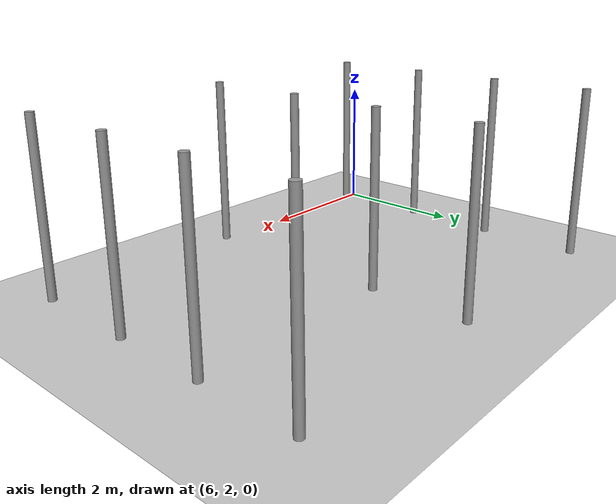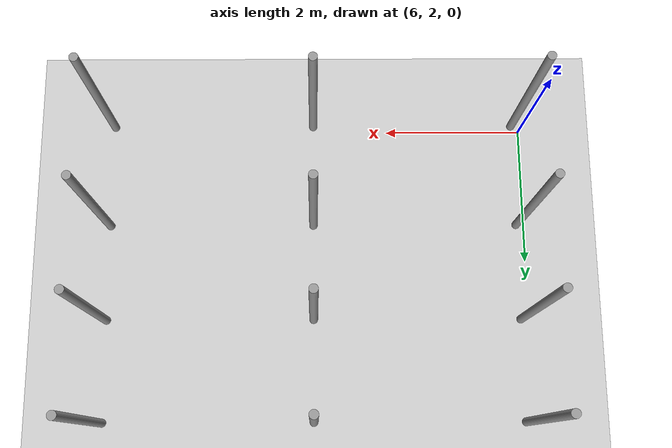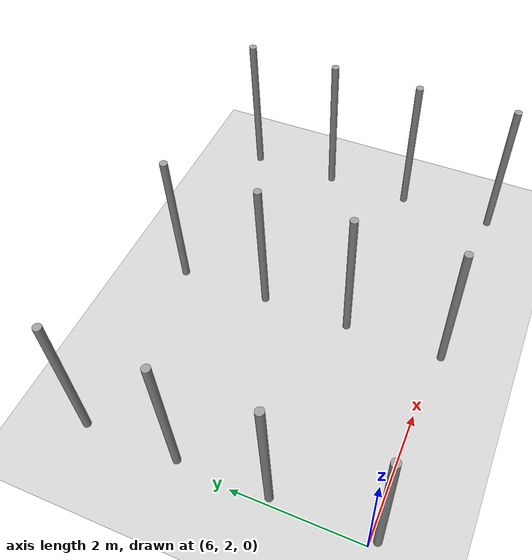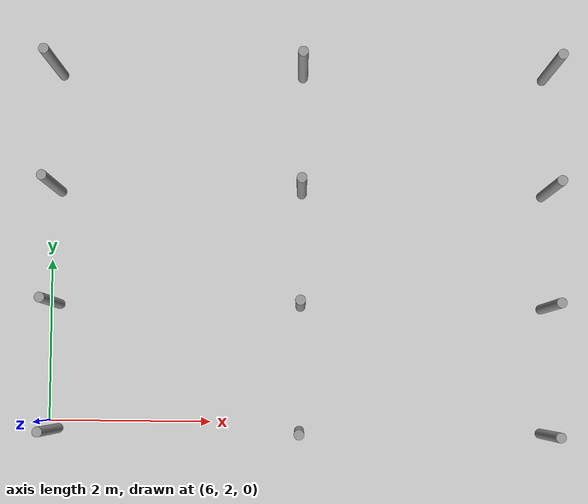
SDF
<sdf version="1.6">
 <world name="default">
  <model name="ground_plane">
   <static>1</static>
   <link name="link">
    <collision name="collision">
     <geometry><plane><normal>0 0 1</normal><size>100 100</size></plane></geometry>
     <surface><friction><ode><mu>100</mu><mu2>50</mu2></ode></friction></surface>
    </collision>
    <visual name="visual">
     <cast_shadows>0</cast_shadows>
     <geometry><plane><normal>0 0 1</normal><size>100 100</size></plane></geometry>
     <material>
      <script><uri>file://media/materials/scripts/gazebo.material</uri><name>Gazebo/Grey</name></script>
     </material>
    </visual>
   </link>
  </model>
  <model name="pole">
   <link name="link_0">
    <inertial>
     <mass>0.0364582</mass>
     <inertia>
      <ixx>0.00312124</ixx>
      <ixy>0</ixy>
      <ixz>0</ixz>
      <iyy>0.00312124</iyy>
      <iyz>0</iyz>
      <izz>0.00016615</izz>
     </inertia>
    </inertial>
    <visual name="visual">
     <geometry><cylinder><radius>0.06</radius><length>2.5</length></cylinder></geometry>
     <material>
      <lighting>1</lighting>
      <script><uri>file://media/materials/scripts/gazebo.material</uri><name>Gazebo/Grey</name></script>
      <ambient>0.3 0.3 0.3 1</ambient>
      <diffuse>0.7 0.7 0.7 1</diffuse>
      <specular>0.01 0.01 0.01 1</specular>
      <emissive>0 0 0 1</emissive>
      <shader type="vertex"><normal_map>__default__</normal_map></shader>
     </material>
    </visual>
    <collision name="collision">
     <geometry><cylinder><radius>0.06</radius><length>2.5</length></cylinder></geometry>
     <surface>
      <friction>
       <ode><mu>1</mu><mu2>1</mu2><fdir1>0 0 0</fdir1><slip1>0</slip1><slip2>0</slip2></ode>
       <torsional>
        <coefficient>1</coefficient>
        <patch_radius>0</patch_radius>
        <surface_radius>0</surface_radius>
        <use_patch_radius>1</use_patch_radius>
        <ode><slip>0</slip></ode>
       </torsional>
      </friction>
      <bounce><restitution_coefficient>0</restitution_coefficient><threshold>1e+06</threshold></bounce>
      <contact>
       <collide_without_contact>0</collide_without_contact>
       <collide_without_contact_bitmask>1</collide_without_contact_bitmask>
       <collide_bitmask>1</collide_bitmask>
       <ode>
        <soft_cfm>0</soft_cfm>
        <soft_erp>0.2</soft_erp>
        <kp>1e+13</kp>
        <kd>1</kd>
        <max_vel>0.01</max_vel>
        <min_depth>0</min_depth>
       </ode>
       <bullet>
        <split_impulse>1</split_impulse>
        <split_impulse_penetration_threshold>-0.01</split_impulse_penetration_threshold>
        <soft_cfm>0</soft_cfm>
        <soft_erp>0.2</soft_erp>
        <kp>1e+13</kp>
        <kd>1</kd>
       </bullet>
      </contact>
     </surface>
    </collision>
   </link>
   <static>0</static>
   <pose>6.10672 1.8998 1.25 -1e-06 1e-06 -0.064377</pose>
  </model>
  <model name="pole_0">
   <link name="link_0">
    <inertial>
     <mass>0.0364582</mass>
     <inertia>
      <ixx>0.00312124</ixx>
      <ixy>0</ixy>
      <ixz>0</ixz>
      <iyy>0.00312124</iyy>
      <iyz>0</iyz>
      <izz>0.00016615</izz>
     </inertia>
    </inertial>
    <visual name="visual">
     <geometry><cylinder><radius>0.06</radius><length>2.5</length></cylinder></geometry>
     <material>
      <lighting>1</lighting>
      <script><uri>file://media/materials/scripts/gazebo.material</uri><name>Gazebo/Grey</name></script>
      <ambient>0.3 0.3 0.3 1</ambient>
      <diffuse>0.7 0.7 0.7 1</diffuse>
      <specular>0.01 0.01 0.01 1</specular>
      <emissive>0 0 0 1</emissive>
      <shader type="vertex"><normal_map>__default__</normal_map></shader>
     </material>
    </visual>
    <collision name="collision">
     <geometry><cylinder><radius>0.06</radius><length>2.5</length></cylinder></geometry>
     <surface>
      <friction>
       <ode><mu>1</mu><mu2>1</mu2><fdir1>0 0 0</fdir1><slip1>0</slip1><slip2>0</slip2></ode>
       <torsional>
        <coefficient>1</coefficient>
        <patch_radius>0</patch_radius>
        <surface_radius>0</surface_radius>
        <use_patch_radius>1</use_patch_radius>
        <ode><slip>0</slip></ode>
       </torsional>
      </friction>
      <bounce><restitution_coefficient>0</restitution_coefficient><threshold>1e+06</threshold></bounce>
      <contact>
       <collide_without_contact>0</collide_without_contact>
       <collide_without_contact_bitmask>1</collide_without_contact_bitmask>
       <collide_bitmask>1</collide_bitmask>
       <ode>
        <soft_cfm>0</soft_cfm>
        <soft_erp>0.2</soft_erp>
        <kp>1e+13</kp>
        <kd>1</kd>
        <max_vel>0.01</max_vel>
        <min_depth>0</min_depth>
       </ode>
       <bullet>
        <split_impulse>1</split_impulse>
        <split_impulse_penetration_threshold>-0.01</split_impulse_penetration_threshold>
        <soft_cfm>0</soft_cfm>
        <soft_erp>0.2</soft_erp>
        <kp>1e+13</kp>
        <kd>1</kd>
       </bullet>
      </contact>
     </surface>
    </collision>
   </link>
   <static>0</static>
   <pose>6.10673 3.44588 1.25 0 -1e-06 -0.035446</pose>
  </model>
  <model name="pole_1">
   <link name="link_0">
    <inertial>
     <mass>0.0364582</mass>
     <inertia>
      <ixx>0.00312124</ixx>
      <ixy>0</ixy>
      <ixz>0</ixz>
      <iyy>0.00312124</iyy>
      <iyz>0</iyz>
      <izz>0.00016615</izz>
     </inertia>
    </inertial>
    <visual name="visual">
     <geometry><cylinder><radius>0.06</radius><length>2.5</length></cylinder></geometry>
     <material>
      <lighting>1</lighting>
      <script><uri>file://media/materials/scripts/gazebo.material</uri><name>Gazebo/Grey</name></script>
      <ambient>0.3 0.3 0.3 1</ambient>
      <diffuse>0.7 0.7 0.7 1</diffuse>
      <specular>0.01 0.01 0.01 1</specular>
      <emissive>0 0 0 1</emissive>
      <shader type="vertex"><normal_map>__default__</normal_map></shader>
     </material>
    </visual>
    <collision name="collision">
     <geometry><cylinder><radius>0.06</radius><length>2.5</length></cylinder></geometry>
     <surface>
      <friction>
       <ode><mu>1</mu><mu2>1</mu2><fdir1>0 0 0</fdir1><slip1>0</slip1><slip2>0</slip2></ode>
       <torsional>
        <coefficient>1</coefficient>
        <patch_radius>0</patch_radius>
        <surface_radius>0</surface_radius>
        <use_patch_radius>1</use_patch_radius>
        <ode><slip>0</slip></ode>
       </torsional>
      </friction>
      <bounce><restitution_coefficient>0</restitution_coefficient><threshold>1e+06</threshold></bounce>
      <contact>
       <collide_without_contact>0</collide_without_contact>
       <collide_without_contact_bitmask>1</collide_without_contact_bitmask>
       <collide_bitmask>1</collide_bitmask>
       <ode>
        <soft_cfm>0</soft_cfm>
        <soft_erp>0.2</soft_erp>
        <kp>1e+13</kp>
        <kd>1</kd>
        <max_vel>0.01</max_vel>
        <min_depth>0</min_depth>
       </ode>
       <bullet>
        <split_impulse>1</split_impulse>
        <split_impulse_penetration_threshold>-0.01</split_impulse_penetration_threshold>
        <soft_cfm>0</soft_cfm>
        <soft_erp>0.2</soft_erp>
        <kp>1e+13</kp>
        <kd>1</kd>
       </bullet>
      </contact>
     </surface>
    </collision>
   </link>
   <static>0</static>
   <pose>6.10675 4.85486 1.24999 -1e-06 1e-06 -0.037347</pose>
  </model>
  <model name="pole_2">
   <link name="link_0">
    <inertial>
     <mass>0.0364582</mass>
     <inertia>
      <ixx>0.00312124</ixx>
      <ixy>0</ixy>
      <ixz>0</ixz>
      <iyy>0.00312124</iyy>
      <iyz>0</iyz>
      <izz>0.00016615</izz>
     </inertia>
    </inertial>
    <visual name="visual">
     <geometry><cylinder><radius>0.06</radius><length>2.5</length></cylinder></geometry>
     <material>
      <lighting>1</lighting>
      <script><uri>file://media/materials/scripts/gazebo.material</uri><name>Gazebo/Grey</name></script>
      <ambient>0.3 0.3 0.3 1</ambient>
      <diffuse>0.7 0.7 0.7 1</diffuse>
      <specular>0.01 0.01 0.01 1</specular>
      <emissive>0 0 0 1</emissive>
      <shader type="vertex"><normal_map>__default__</normal_map></shader>
     </material>
    </visual>
    <collision name="collision">
     <geometry><cylinder><radius>0.06</radius><length>2.5</length></cylinder></geometry>
     <surface>
      <friction>
       <ode><mu>1</mu><mu2>1</mu2><fdir1>0 0 0</fdir1><slip1>0</slip1><slip2>0</slip2></ode>
       <torsional>
        <coefficient>1</coefficient>
        <patch_radius>0</patch_radius>
        <surface_radius>0</surface_radius>
        <use_patch_radius>1</use_patch_radius>
        <ode><slip>0</slip></ode>
       </torsional>
      </friction>
      <bounce><restitution_coefficient>0</restitution_coefficient><threshold>1e+06</threshold></bounce>
      <contact>
       <collide_without_contact>0</collide_without_contact>
       <collide_without_contact_bitmask>1</collide_without_contact_bitmask>
       <collide_bitmask>1</collide_bitmask>
       <ode>
        <soft_cfm>0</soft_cfm>
        <soft_erp>0.2</soft_erp>
        <kp>1e+13</kp>
        <kd>1</kd>
        <max_vel>0.01</max_vel>
        <min_depth>0</min_depth>
       </ode>
       <bullet>
        <split_impulse>1</split_impulse>
        <split_impulse_penetration_threshold>-0.01</split_impulse_penetration_threshold>
        <soft_cfm>0</soft_cfm>
        <soft_erp>0.2</soft_erp>
        <kp>1e+13</kp>
        <kd>1</kd>
       </bullet>
      </contact>
     </surface>
    </collision>
   </link>
   <static>0</static>
   <pose>6.10639 6.31778 1.24999 0 2e-06 -0.044124</pose>
  </model>
  <model name="pole_3">
   <link name="link_0">
    <inertial>
     <mass>0.0364582</mass>
     <inertia>
      <ixx>0.00312124</ixx>
      <ixy>0</ixy>
      <ixz>0</ixz>
      <iyy>0.00312124</iyy>
      <iyz>0</iyz>
      <izz>0.00016615</izz>
     </inertia>
    </inertial>
    <visual name="visual">
     <geometry><cylinder><radius>0.06</radius><length>2.5</length></cylinder></geometry>
     <material>
      <lighting>1</lighting>
      <script><uri>file://media/materials/scripts/gazebo.material</uri><name>Gazebo/Grey</name></script>
      <ambient>0.3 0.3 0.3 1</ambient>
      <diffuse>0.7 0.7 0.7 1</diffuse>
      <specular>0.01 0.01 0.01 1</specular>
      <emissive>0 0 0 1</emissive>
      <shader type="vertex"><normal_map>__default__</normal_map></shader>
     </material>
    </visual>
    <collision name="collision">
     <geometry><cylinder><radius>0.06</radius><length>2.5</length></cylinder></geometry>
     <surface>
      <friction>
       <ode><mu>1</mu><mu2>1</mu2><fdir1>0 0 0</fdir1><slip1>0</slip1><slip2>0</slip2></ode>
       <torsional>
        <coefficient>1</coefficient>
        <patch_radius>0</patch_radius>
        <surface_radius>0</surface_radius>
        <use_patch_radius>1</use_patch_radius>
        <ode><slip>0</slip></ode>
       </torsional>
      </friction>
      <bounce><restitution_coefficient>0</restitution_coefficient><threshold>1e+06</threshold></bounce>
      <contact>
       <collide_without_contact>0</collide_without_contact>
       <collide_without_contact_bitmask>1</collide_without_contact_bitmask>
       <collide_bitmask>1</collide_bitmask>
       <ode>
        <soft_cfm>0</soft_cfm>
        <soft_erp>0.2</soft_erp>
        <kp>1e+13</kp>
        <kd>1</kd>
        <max_vel>0.01</max_vel>
        <min_depth>0</min_depth>
       </ode>
       <bullet>
        <split_impulse>1</split_impulse>
        <split_impulse_penetration_threshold>-0.01</split_impulse_penetration_threshold>
        <soft_cfm>0</soft_cfm>
        <soft_erp>0.2</soft_erp>
        <kp>1e+13</kp>
        <kd>1</kd>
       </bullet>
      </contact>
     </surface>
    </collision>
   </link>
   <static>0</static>
   <pose>12.1068 1.89979 1.24999 -1e-06 3e-06 -0.038594</pose>
  </model>
  <model name="pole_4">
   <link name="link_0">
    <inertial>
     <mass>0.0364582</mass>
     <inertia>
      <ixx>0.00312124</ixx>
      <ixy>0</ixy>
      <ixz>0</ixz>
      <iyy>0.00312124</iyy>
      <iyz>0</iyz>
      <izz>0.00016615</izz>
     </inertia>
    </inertial>
    <visual name="visual">
     <geometry><cylinder><radius>0.06</radius><length>2.5</length></cylinder></geometry>
     <material>
      <lighting>1</lighting>
      <script><uri>file://media/materials/scripts/gazebo.material</uri><name>Gazebo/Grey</name></script>
      <ambient>0.3 0.3 0.3 1</ambient>
      <diffuse>0.7 0.7 0.7 1</diffuse>
      <specular>0.01 0.01 0.01 1</specular>
      <emissive>0 0 0 1</emissive>
      <shader type="vertex"><normal_map>__default__</normal_map></shader>
     </material>
    </visual>
    <collision name="collision">
     <geometry><cylinder><radius>0.06</radius><length>2.5</length></cylinder></geometry>
     <surface>
      <friction>
       <ode><mu>1</mu><mu2>1</mu2><fdir1>0 0 0</fdir1><slip1>0</slip1><slip2>0</slip2></ode>
       <torsional>
        <coefficient>1</coefficient>
        <patch_radius>0</patch_radius>
        <surface_radius>0</surface_radius>
        <use_patch_radius>1</use_patch_radius>
        <ode><slip>0</slip></ode>
       </torsional>
      </friction>
      <bounce><restitution_coefficient>0</restitution_coefficient><threshold>1e+06</threshold></bounce>
      <contact>
       <collide_without_contact>0</collide_without_contact>
       <collide_without_contact_bitmask>1</collide_without_contact_bitmask>
       <collide_bitmask>1</collide_bitmask>
       <ode>
        <soft_cfm>0</soft_cfm>
        <soft_erp>0.2</soft_erp>
        <kp>1e+13</kp>
        <kd>1</kd>
        <max_vel>0.01</max_vel>
        <min_depth>0</min_depth>
       </ode>
       <bullet>
        <split_impulse>1</split_impulse>
        <split_impulse_penetration_threshold>-0.01</split_impulse_penetration_threshold>
        <soft_cfm>0</soft_cfm>
        <soft_erp>0.2</soft_erp>
        <kp>1e+13</kp>
        <kd>1</kd>
       </bullet>
      </contact>
     </surface>
    </collision>
   </link>
   <static>0</static>
   <pose>9.10673 3.44592 1.25 -1e-06 -0 -0.035307</pose>
  </model>
  <model name="pole_5">
   <link name="link_0">
    <inertial>
     <mass>0.0364582</mass>
     <inertia>
      <ixx>0.00312124</ixx>
      <ixy>0</ixy>
      <ixz>0</ixz>
      <iyy>0.00312124</iyy>
      <iyz>0</iyz>
      <izz>0.00016615</izz>
     </inertia>
    </inertial>
    <visual name="visual">
     <geometry><cylinder><radius>0.06</radius><length>2.5</length></cylinder></geometry>
     <material>
      <lighting>1</lighting>
      <script><uri>file://media/materials/scripts/gazebo.material</uri><name>Gazebo/Grey</name></script>
      <ambient>0.3 0.3 0.3 1</ambient>
      <diffuse>0.7 0.7 0.7 1</diffuse>
      <specular>0.01 0.01 0.01 1</specular>
      <emissive>0 0 0 1</emissive>
      <shader type="vertex"><normal_map>__default__</normal_map></shader>
     </material>
    </visual>
    <collision name="collision">
     <geometry><cylinder><radius>0.06</radius><length>2.5</length></cylinder></geometry>
     <surface>
      <friction>
       <ode><mu>1</mu><mu2>1</mu2><fdir1>0 0 0</fdir1><slip1>0</slip1><slip2>0</slip2></ode>
       <torsional>
        <coefficient>1</coefficient>
        <patch_radius>0</patch_radius>
        <surface_radius>0</surface_radius>
        <use_patch_radius>1</use_patch_radius>
        <ode><slip>0</slip></ode>
       </torsional>
      </friction>
      <bounce><restitution_coefficient>0</restitution_coefficient><threshold>1e+06</threshold></bounce>
      <contact>
       <collide_without_contact>0</collide_without_contact>
       <collide_without_contact_bitmask>1</collide_without_contact_bitmask>
       <collide_bitmask>1</collide_bitmask>
       <ode>
        <soft_cfm>0</soft_cfm>
        <soft_erp>0.2</soft_erp>
        <kp>1e+13</kp>
        <kd>1</kd>
        <max_vel>0.01</max_vel>
        <min_depth>0</min_depth>
       </ode>
       <bullet>
        <split_impulse>1</split_impulse>
        <split_impulse_penetration_threshold>-0.01</split_impulse_penetration_threshold>
        <soft_cfm>0</soft_cfm>
        <soft_erp>0.2</soft_erp>
        <kp>1e+13</kp>
        <kd>1</kd>
       </bullet>
      </contact>
     </surface>
    </collision>
   </link>
   <static>0</static>
   <pose>9.10679 4.85497 1.24999 0 -1e-06 -0.03492</pose>
  </model>
  <model name="pole_6">
   <link name="link_0">
    <inertial>
     <mass>0.0364582</mass>
     <inertia>
      <ixx>0.00312124</ixx>
      <ixy>0</ixy>
      <ixz>0</ixz>
      <iyy>0.00312124</iyy>
      <iyz>0</iyz>
      <izz>0.00016615</izz>
     </inertia>
    </inertial>
    <visual name="visual">
     <geometry><cylinder><radius>0.06</radius><length>2.5</length></cylinder></geometry>
     <material>
      <lighting>1</lighting>
      <script><uri>file://media/materials/scripts/gazebo.material</uri><name>Gazebo/Grey</name></script>
      <ambient>0.3 0.3 0.3 1</ambient>
      <diffuse>0.7 0.7 0.7 1</diffuse>
      <specular>0.01 0.01 0.01 1</specular>
      <emissive>0 0 0 1</emissive>
      <shader type="vertex"><normal_map>__default__</normal_map></shader>
     </material>
    </visual>
    <collision name="collision">
     <geometry><cylinder><radius>0.06</radius><length>2.5</length></cylinder></geometry>
     <surface>
      <friction>
       <ode><mu>1</mu><mu2>1</mu2><fdir1>0 0 0</fdir1><slip1>0</slip1><slip2>0</slip2></ode>
       <torsional>
        <coefficient>1</coefficient>
        <patch_radius>0</patch_radius>
        <surface_radius>0</surface_radius>
        <use_patch_radius>1</use_patch_radius>
        <ode><slip>0</slip></ode>
       </torsional>
      </friction>
      <bounce><restitution_coefficient>0</restitution_coefficient><threshold>1e+06</threshold></bounce>
      <contact>
       <collide_without_contact>0</collide_without_contact>
       <collide_without_contact_bitmask>1</collide_without_contact_bitmask>
       <collide_bitmask>1</collide_bitmask>
       <ode>
        <soft_cfm>0</soft_cfm>
        <soft_erp>0.2</soft_erp>
        <kp>1e+13</kp>
        <kd>1</kd>
        <max_vel>0.01</max_vel>
        <min_depth>0</min_depth>
       </ode>
       <bullet>
        <split_impulse>1</split_impulse>
        <split_impulse_penetration_threshold>-0.01</split_impulse_penetration_threshold>
        <soft_cfm>0</soft_cfm>
        <soft_erp>0.2</soft_erp>
        <kp>1e+13</kp>
        <kd>1</kd>
       </bullet>
      </contact>
     </surface>
    </collision>
   </link>
   <static>0</static>
   <pose>9.10674 6.31783 1.24999 -0 -0 -0.057063</pose>
  </model>
  <model name="pole_7">
   <link name="link_0">
    <inertial>
     <mass>0.0364582</mass>
     <inertia>
      <ixx>0.00312124</ixx>
      <ixy>0</ixy>
      <ixz>0</ixz>
      <iyy>0.00312124</iyy>
      <iyz>0</iyz>
      <izz>0.00016615</izz>
     </inertia>
    </inertial>
    <visual name="visual">
     <geometry><cylinder><radius>0.06</radius><length>2.5</length></cylinder></geometry>
     <material>
      <lighting>1</lighting>
      <script><uri>file://media/materials/scripts/gazebo.material</uri><name>Gazebo/Grey</name></script>
      <ambient>0.3 0.3 0.3 1</ambient>
      <diffuse>0.7 0.7 0.7 1</diffuse>
      <specular>0.01 0.01 0.01 1</specular>
      <emissive>0 0 0 1</emissive>
      <shader type="vertex"><normal_map>__default__</normal_map></shader>
     </material>
    </visual>
    <collision name="collision">
     <geometry><cylinder><radius>0.06</radius><length>2.5</length></cylinder></geometry>
     <surface>
      <friction>
       <ode><mu>1</mu><mu2>1</mu2><fdir1>0 0 0</fdir1><slip1>0</slip1><slip2>0</slip2></ode>
       <torsional>
        <coefficient>1</coefficient>
        <patch_radius>0</patch_radius>
        <surface_radius>0</surface_radius>
        <use_patch_radius>1</use_patch_radius>
        <ode><slip>0</slip></ode>
       </torsional>
      </friction>
      <bounce><restitution_coefficient>0</restitution_coefficient><threshold>1e+06</threshold></bounce>
      <contact>
       <collide_without_contact>0</collide_without_contact>
       <collide_without_contact_bitmask>1</collide_without_contact_bitmask>
       <collide_bitmask>1</collide_bitmask>
       <ode>
        <soft_cfm>0</soft_cfm>
        <soft_erp>0.2</soft_erp>
        <kp>1e+13</kp>
        <kd>1</kd>
        <max_vel>0.01</max_vel>
        <min_depth>0</min_depth>
       </ode>
       <bullet>
        <split_impulse>1</split_impulse>
        <split_impulse_penetration_threshold>-0.01</split_impulse_penetration_threshold>
        <soft_cfm>0</soft_cfm>
        <soft_erp>0.2</soft_erp>
        <kp>1e+13</kp>
        <kd>1</kd>
       </bullet>
      </contact>
     </surface>
    </collision>
   </link>
   <static>0</static>
   <pose>9.10671 1.89996 1.24999 -0 1e-06 -0.028709</pose>
  </model>
  <model name="pole_8">
   <link name="link_0">
    <inertial>
     <mass>0.0364582</mass>
     <inertia>
      <ixx>0.00312124</ixx>
      <ixy>0</ixy>
      <ixz>0</ixz>
      <iyy>0.00312124</iyy>
      <iyz>0</iyz>
      <izz>0.00016615</izz>
     </inertia>
    </inertial>
    <visual name="visual">
     <geometry><cylinder><radius>0.06</radius><length>2.5</length></cylinder></geometry>
     <material>
      <lighting>1</lighting>
      <script><uri>file://media/materials/scripts/gazebo.material</uri><name>Gazebo/Grey</name></script>
      <ambient>0.3 0.3 0.3 1</ambient>
      <diffuse>0.7 0.7 0.7 1</diffuse>
      <specular>0.01 0.01 0.01 1</specular>
      <emissive>0 0 0 1</emissive>
      <shader type="vertex"><normal_map>__default__</normal_map></shader>
     </material>
    </visual>
    <collision name="collision">
     <geometry><cylinder><radius>0.06</radius><length>2.5</length></cylinder></geometry>
     <surface>
      <friction>
       <ode><mu>1</mu><mu2>1</mu2><fdir1>0 0 0</fdir1><slip1>0</slip1><slip2>0</slip2></ode>
       <torsional>
        <coefficient>1</coefficient>
        <patch_radius>0</patch_radius>
        <surface_radius>0</surface_radius>
        <use_patch_radius>1</use_patch_radius>
        <ode><slip>0</slip></ode>
       </torsional>
      </friction>
      <bounce><restitution_coefficient>0</restitution_coefficient><threshold>1e+06</threshold></bounce>
      <contact>
       <collide_without_contact>0</collide_without_contact>
       <collide_without_contact_bitmask>1</collide_without_contact_bitmask>
       <collide_bitmask>1</collide_bitmask>
       <ode>
        <soft_cfm>0</soft_cfm>
        <soft_erp>0.2</soft_erp>
        <kp>1e+13</kp>
        <kd>1</kd>
        <max_vel>0.01</max_vel>
        <min_depth>0</min_depth>
       </ode>
       <bullet>
        <split_impulse>1</split_impulse>
        <split_impulse_penetration_threshold>-0.01</split_impulse_penetration_threshold>
        <soft_cfm>0</soft_cfm>
        <soft_erp>0.2</soft_erp>
        <kp>1e+13</kp>
        <kd>1</kd>
       </bullet>
      </contact>
     </surface>
    </collision>
   </link>
   <static>0</static>
   <pose>12.1069 3.4459 1.25 -1e-06 1e-06 -0.032644</pose>
  </model>
  <model name="pole_9">
   <link name="link_0">
    <inertial>
     <mass>0.0364582</mass>
     <inertia>
      <ixx>0.00312124</ixx>
      <ixy>0</ixy>
      <ixz>0</ixz>
      <iyy>0.00312124</iyy>
      <iyz>0</iyz>
      <izz>0.00016615</izz>
     </inertia>
    </inertial>
    <visual name="visual">
     <geometry><cylinder><radius>0.06</radius><length>2.5</length></cylinder></geometry>
     <material>
      <lighting>1</lighting>
      <script><uri>file://media/materials/scripts/gazebo.material</uri><name>Gazebo/Grey</name></script>
      <ambient>0.3 0.3 0.3 1</ambient>
      <diffuse>0.7 0.7 0.7 1</diffuse>
      <specular>0.01 0.01 0.01 1</specular>
      <emissive>0 0 0 1</emissive>
      <shader type="vertex"><normal_map>__default__</normal_map></shader>
     </material>
    </visual>
    <collision name="collision">
     <geometry><cylinder><radius>0.06</radius><length>2.5</length></cylinder></geometry>
     <surface>
      <friction>
       <ode><mu>1</mu><mu2>1</mu2><fdir1>0 0 0</fdir1><slip1>0</slip1><slip2>0</slip2></ode>
       <torsional>
        <coefficient>1</coefficient>
        <patch_radius>0</patch_radius>
        <surface_radius>0</surface_radius>
        <use_patch_radius>1</use_patch_radius>
        <ode><slip>0</slip></ode>
       </torsional>
      </friction>
      <bounce><restitution_coefficient>0</restitution_coefficient><threshold>1e+06</threshold></bounce>
      <contact>
       <collide_without_contact>0</collide_without_contact>
       <collide_without_contact_bitmask>1</collide_without_contact_bitmask>
       <collide_bitmask>1</collide_bitmask>
       <ode>
        <soft_cfm>0</soft_cfm>
        <soft_erp>0.2</soft_erp>
        <kp>1e+13</kp>
        <kd>1</kd>
        <max_vel>0.01</max_vel>
        <min_depth>0</min_depth>
       </ode>
       <bullet>
        <split_impulse>1</split_impulse>
        <split_impulse_penetration_threshold>-0.01</split_impulse_penetration_threshold>
        <soft_cfm>0</soft_cfm>
        <soft_erp>0.2</soft_erp>
        <kp>1e+13</kp>
        <kd>1</kd>
       </bullet>
      </contact>
     </surface>
    </collision>
   </link>
   <static>0</static>
   <pose>12.1068 4.85482 1.25 -1e-06 -0 -0.034751</pose>
  </model>
  <model name="pole_10">
   <link name="link_0">
    <inertial>
     <mass>0.0364582</mass>
     <inertia>
      <ixx>0.00312124</ixx>
      <ixy>0</ixy>
      <ixz>0</ixz>
      <iyy>0.00312124</iyy>
      <iyz>0</iyz>
      <izz>0.00016615</izz>
     </inertia>
    </inertial>
    <visual name="visual">
     <geometry><cylinder><radius>0.06</radius><length>2.5</length></cylinder></geometry>
     <material>
      <lighting>1</lighting>
      <script><uri>file://media/materials/scripts/gazebo.material</uri><name>Gazebo/Grey</name></script>
      <ambient>0.3 0.3 0.3 1</ambient>
      <diffuse>0.7 0.7 0.7 1</diffuse>
      <specular>0.01 0.01 0.01 1</specular>
      <emissive>0 0 0 1</emissive>
      <shader type="vertex"><normal_map>__default__</normal_map></shader>
     </material>
    </visual>
    <collision name="collision">
     <geometry><cylinder><radius>0.06</radius><length>2.5</length></cylinder></geometry>
     <surface>
      <friction>
       <ode><mu>1</mu><mu2>1</mu2><fdir1>0 0 0</fdir1><slip1>0</slip1><slip2>0</slip2></ode>
       <torsional>
        <coefficient>1</coefficient>
        <patch_radius>0</patch_radius>
        <surface_radius>0</surface_radius>
        <use_patch_radius>1</use_patch_radius>
        <ode><slip>0</slip></ode>
       </torsional>
      </friction>
      <bounce><restitution_coefficient>0</restitution_coefficient><threshold>1e+06</threshold></bounce>
      <contact>
       <collide_without_contact>0</collide_without_contact>
       <collide_without_contact_bitmask>1</collide_without_contact_bitmask>
       <collide_bitmask>1</collide_bitmask>
       <ode>
        <soft_cfm>0</soft_cfm>
        <soft_erp>0.2</soft_erp>
        <kp>1e+13</kp>
        <kd>1</kd>
        <max_vel>0.01</max_vel>
        <min_depth>0</min_depth>
       </ode>
       <bullet>
        <split_impulse>1</split_impulse>
        <split_impulse_penetration_threshold>-0.01</split_impulse_penetration_threshold>
        <soft_cfm>0</soft_cfm>
        <soft_erp>0.2</soft_erp>
        <kp>1e+13</kp>
        <kd>1</kd>
       </bullet>
      </contact>
     </surface>
    </collision>
   </link>
   <static>0</static>
   <pose>12.1068 6.31777 1.24999 0 -2e-06 -0.033135</pose>
  </model>
 </world>
</sdf>
